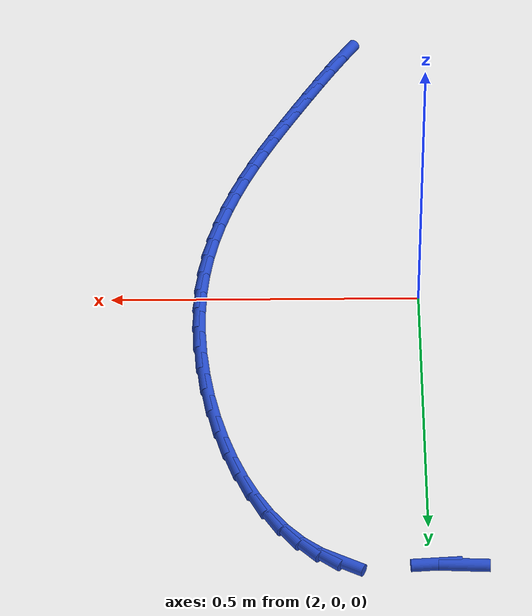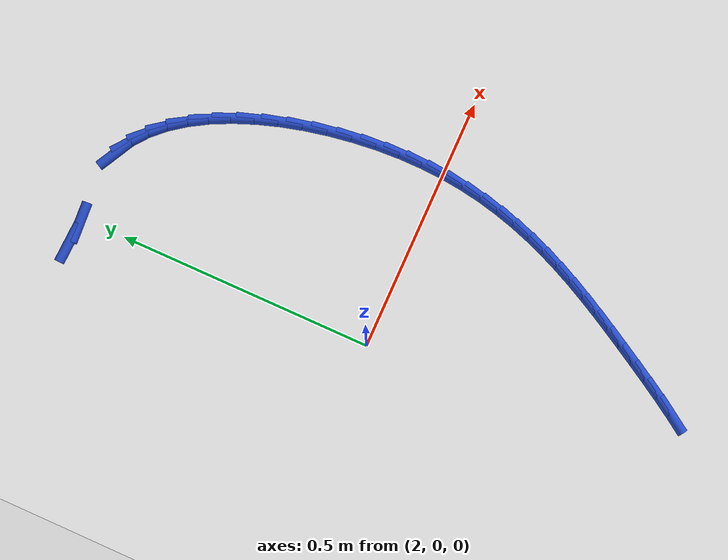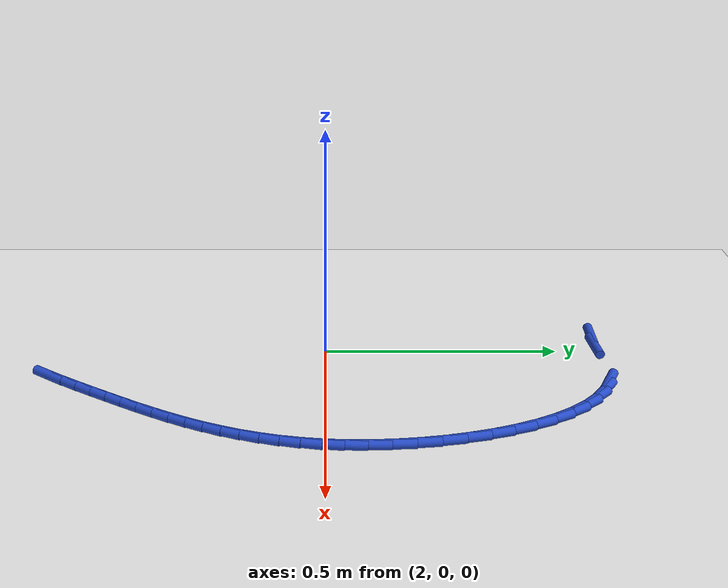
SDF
<sdf version="1.6">
 <world name="default">
  <model name="ground_plane">
   <static>1</static>
   <link name="link">
    <collision name="collision">
     <geometry><plane><normal>0 0 1</normal><size>100 100</size></plane></geometry>
     <surface><friction><ode><mu>100</mu><mu2>50</mu2></ode></friction></surface>
    </collision>
    <visual name="visual">
     <cast_shadows>0</cast_shadows>
     <geometry><plane><normal>0 0 1</normal><size>100 100</size></plane></geometry>
     <material>
      <script><uri>file://media/materials/scripts/gazebo.material</uri><name>Gazebo/WhiteGlow</name></script>
     </material>
    </visual>
   </link>
  </model>
  <model name="line">
   <link name="link_80">
    <pose>1.947225847675556 0.5884268410788208 0.01 0 1.57 -0.04314987171424927</pose>
    <collision name="collision">
     <geometry><cylinder><radius>0.01</radius><length>0.08</length></cylinder></geometry>
    </collision>
    <visual name="visual">
     <material>
      <script><name>Gazebo/Blue</name><uri>file://media/materials/scripts/gazebo.material</uri></script>
     </material>
     <geometry><cylinder><radius>0.01</radius><length>0.08</length></cylinder></geometry>
    </visual>
   </link>
   <link name="link_81">
    <pose>1.9902621955391018 0.5865686747992731 0.01 0 1.57 0.067084478952186</pose>
    <collision name="collision">
     <geometry><cylinder><radius>0.01</radius><length>0.08</length></cylinder></geometry>
    </collision>
    <visual name="visual">
     <material>
      <script><name>Gazebo/Blue</name><uri>file://media/materials/scripts/gazebo.material</uri></script>
     </material>
     <geometry><cylinder><radius>0.01</radius><length>0.08</length></cylinder></geometry>
    </visual>
   </link>
   <link name="link_85">
    <pose>2.1379226514192493 0.5802391763029245 0.01 0 1.57 -0.487581443013725</pose>
    <collision name="collision">
     <geometry><cylinder><radius>0.01</radius><length>0.08</length></cylinder></geometry>
    </collision>
    <visual name="visual">
     <material>
      <script><name>Gazebo/Blue</name><uri>file://media/materials/scripts/gazebo.material</uri></script>
     </material>
     <geometry><cylinder><radius>0.01</radius><length>0.08</length></cylinder></geometry>
    </visual>
   </link>
   <link name="link_86">
    <pose>2.1689075497787798 0.5638083339964297 0.01 0 1.57 -0.6616426683409563</pose>
    <collision name="collision">
     <geometry><cylinder><radius>0.01</radius><length>0.08</length></cylinder></geometry>
    </collision>
    <visual name="visual">
     <material>
      <script><name>Gazebo/Blue</name><uri>file://media/materials/scripts/gazebo.material</uri></script>
     </material>
     <geometry><cylinder><radius>0.01</radius><length>0.08</length></cylinder></geometry>
    </visual>
   </link>
   <link name="link_87">
    <pose>2.197562003624889 0.541493953535901 0.01 0 1.57 -0.8088700209414623</pose>
    <collision name="collision">
     <geometry><cylinder><radius>0.01</radius><length>0.08</length></cylinder></geometry>
    </collision>
    <visual name="visual">
     <material>
      <script><name>Gazebo/Blue</name><uri>file://media/materials/scripts/gazebo.material</uri></script>
     </material>
     <geometry><cylinder><radius>0.01</radius><length>0.08</length></cylinder></geometry>
    </visual>
   </link>
   <link name="link_88">
    <pose>2.2238761103807447 0.5139146356387069 0.01 0 1.57 -0.9313866257830041</pose>
    <collision name="collision">
     <geometry><cylinder><radius>0.01</radius><length>0.08</length></cylinder></geometry>
    </collision>
    <visual name="visual">
     <material>
      <script><name>Gazebo/Blue</name><uri>file://media/materials/scripts/gazebo.material</uri></script>
     </material>
     <geometry><cylinder><radius>0.01</radius><length>0.08</length></cylinder></geometry>
    </visual>
   </link>
   <link name="link_89">
    <pose>2.2478399674695146 0.4816889810222145 0.01 0 1.57 -1.0333906887210105</pose>
    <collision name="collision">
     <geometry><cylinder><radius>0.01</radius><length>0.08</length></cylinder></geometry>
    </collision>
    <visual name="visual">
     <material>
      <script><name>Gazebo/Blue</name><uri>file://media/materials/scripts/gazebo.material</uri></script>
     </material>
     <geometry><cylinder><radius>0.01</radius><length>0.08</length></cylinder></geometry>
    </visual>
   </link>
   <link name="link_90">
    <pose>2.269443672314366 0.44543559040379255 0.01 0 1.57 -1.11927516878934</pose>
    <collision name="collision">
     <geometry><cylinder><radius>0.01</radius><length>0.08</length></cylinder></geometry>
    </collision>
    <visual name="visual">
     <material>
      <script><name>Gazebo/Blue</name><uri>file://media/materials/scripts/gazebo.material</uri></script>
     </material>
     <geometry><cylinder><radius>0.01</radius><length>0.08</length></cylinder></geometry>
    </visual>
   </link>
   <link name="link_91">
    <pose>2.288677322338466 0.40577306450080863 0.01 0 1.57 -1.1928823366078283</pose>
    <collision name="collision">
     <geometry><cylinder><radius>0.01</radius><length>0.08</length></cylinder></geometry>
    </collision>
    <visual name="visual">
     <material>
      <script><name>Gazebo/Blue</name><uri>file://media/materials/scripts/gazebo.material</uri></script>
     </material>
     <geometry><cylinder><radius>0.01</radius><length>0.08</length></cylinder></geometry>
    </visual>
   </link>
   <link name="link_92">
    <pose>2.3055310149649815 0.3633200040306307 0.01 0 1.57 -1.2573609792401905</pose>
    <collision name="collision">
     <geometry><cylinder><radius>0.01</radius><length>0.08</length></cylinder></geometry>
    </collision>
    <visual name="visual">
     <material>
      <script><name>Gazebo/Blue</name><uri>file://media/materials/scripts/gazebo.material</uri></script>
     </material>
     <geometry><cylinder><radius>0.01</radius><length>0.08</length></cylinder></geometry>
    </visual>
   </link>
   <link name="link_93">
    <pose>2.31999484761708 0.3186950097106264 0.01 0 1.57 -1.31525813839005</pose>
    <collision name="collision">
     <geometry><cylinder><radius>0.01</radius><length>0.08</length></cylinder></geometry>
    </collision>
    <visual name="visual">
     <material>
      <script><name>Gazebo/Blue</name><uri>file://media/materials/scripts/gazebo.material</uri></script>
     </material>
     <geometry><cylinder><radius>0.01</radius><length>0.08</length></cylinder></geometry>
    </visual>
   </link>
   <link name="link_94">
    <pose>2.3320589177179296 0.27251668225816444 0.01 0 1.57 -1.3686745710208759</pose>
    <collision name="collision">
     <geometry><cylinder><radius>0.01</radius><length>0.08</length></cylinder></geometry>
    </collision>
    <visual name="visual">
     <material>
      <script><name>Gazebo/Blue</name><uri>file://media/materials/scripts/gazebo.material</uri></script>
     </material>
     <geometry><cylinder><radius>0.01</radius><length>0.08</length></cylinder></geometry>
    </visual>
   </link>
   <link name="link_95">
    <pose>2.3417133226906968 0.22540362239061196 0.01 0 1.57 -1.419423441275754</pose>
    <collision name="collision">
     <geometry><cylinder><radius>0.01</radius><length>0.08</length></cylinder></geometry>
    </collision>
    <visual name="visual">
     <material>
      <script><name>Gazebo/Blue</name><uri>file://media/materials/scripts/gazebo.material</uri></script>
     </material>
     <geometry><cylinder><radius>0.01</radius><length>0.08</length></cylinder></geometry>
    </visual>
   </link>
   <link name="link_96">
    <pose>2.348948159958549 0.17797443082533784 0.01 0 1.57 -1.4691806053929057</pose>
    <collision name="collision">
     <geometry><cylinder><radius>0.01</radius><length>0.08</length></cylinder></geometry>
    </collision>
    <visual name="visual">
     <material>
      <script><name>Gazebo/Blue</name><uri>file://media/materials/scripts/gazebo.material</uri></script>
     </material>
     <geometry><cylinder><radius>0.01</radius><length>0.08</length></cylinder></geometry>
    </visual>
   </link>
   <link name="link_97">
    <pose>2.353753526944654 0.13084770827970887 0.01 0 1.57 -1.5196352819636079</pose>
    <collision name="collision">
     <geometry><cylinder><radius>0.01</radius><length>0.08</length></cylinder></geometry>
    </collision>
    <visual name="visual">
     <material>
      <script><name>Gazebo/Blue</name><uri>file://media/materials/scripts/gazebo.material</uri></script>
     </material>
     <geometry><cylinder><radius>0.01</radius><length>0.08</length></cylinder></geometry>
    </visual>
   </link>
   <link name="link_98">
    <pose>2.356119521072178 0.08464205547109349 0.01 0 1.57 1.5690277225631035</pose>
    <collision name="collision">
     <geometry><cylinder><radius>0.01</radius><length>0.08</length></cylinder></geometry>
    </collision>
    <visual name="visual">
     <material>
      <script><name>Gazebo/Blue</name><uri>file://media/materials/scripts/gazebo.material</uri></script>
     </material>
     <geometry><cylinder><radius>0.01</radius><length>0.08</length></cylinder></geometry>
    </visual>
   </link>
   <link name="link_99">
    <pose>2.356040488785441 0.039955854390743985 0.01 0 1.57 1.513853761605295</pose>
    <collision name="collision">
     <geometry><cylinder><radius>0.01</radius><length>0.08</length></cylinder></geometry>
    </collision>
    <visual name="visual">
     <material>
      <script><name>Gazebo/Blue</name><uri>file://media/materials/scripts/gazebo.material</uri></script>
     </material>
     <geometry><cylinder><radius>0.01</radius><length>0.08</length></cylinder></geometry>
    </visual>
   </link>
   <link name="link_100">
    <pose>2.3535919068106566 -0.002998566814326302 0.01 0 1.57 1.458358270285016</pose>
    <collision name="collision">
     <geometry><cylinder><radius>0.01</radius><length>0.08</length></cylinder></geometry>
    </collision>
    <visual name="visual">
     <material>
      <script><name>Gazebo/Blue</name><uri>file://media/materials/scripts/gazebo.material</uri></script>
     </material>
     <geometry><cylinder><radius>0.01</radius><length>0.08</length></cylinder></geometry>
    </visual>
   </link>
   <link name="link_101">
    <pose>2.3489221099906663 -0.04435557121214312 0.01 0 1.57 1.4034774273507733</pose>
    <collision name="collision">
     <geometry><cylinder><radius>0.01</radius><length>0.08</length></cylinder></geometry>
    </collision>
    <visual name="visual">
     <material>
      <script><name>Gazebo/Blue</name><uri>file://media/materials/scripts/gazebo.material</uri></script>
     </material>
     <geometry><cylinder><radius>0.01</radius><length>0.08</length></cylinder></geometry>
    </visual>
   </link>
   <link name="link_102">
    <pose>2.342182021755949 -0.0842618395181582 0.01 0 1.57 1.3501240868479738</pose>
    <collision name="collision">
     <geometry><cylinder><radius>0.01</radius><length>0.08</length></cylinder></geometry>
    </collision>
    <visual name="visual">
     <material>
      <script><name>Gazebo/Blue</name><uri>file://media/materials/scripts/gazebo.material</uri></script>
     </material>
     <geometry><cylinder><radius>0.01</radius><length>0.08</length></cylinder></geometry>
    </visual>
   </link>
   <link name="link_103">
    <pose>2.3335225655369807 -0.1228640524478232 0.01 0 1.57 1.299191176188648</pose>
    <collision name="collision">
     <geometry><cylinder><radius>0.01</radius><length>0.08</length></cylinder></geometry>
    </collision>
    <visual name="visual">
     <material>
      <script><name>Gazebo/Blue</name><uri>file://media/materials/scripts/gazebo.material</uri></script>
     </material>
     <geometry><cylinder><radius>0.01</radius><length>0.08</length></cylinder></geometry>
    </visual>
   </link>
   <link name="link_104">
    <pose>2.3230946647642394 -0.16030889071658977 0.01 0 1.57 1.2515005173727378</pose>
    <collision name="collision">
     <geometry><cylinder><radius>0.01</radius><length>0.08</length></cylinder></geometry>
    </collision>
    <visual name="visual">
     <material>
      <script><name>Gazebo/Blue</name><uri>file://media/materials/scripts/gazebo.material</uri></script>
     </material>
     <geometry><cylinder><radius>0.01</radius><length>0.08</length></cylinder></geometry>
    </visual>
   </link>
   <link name="link_105">
    <pose>2.311049242868204 -0.19674303503990956 0.01 0 1.57 1.207763068497957</pose>
    <collision name="collision">
     <geometry><cylinder><radius>0.01</radius><length>0.08</length></cylinder></geometry>
    </collision>
    <visual name="visual">
     <material>
      <script><name>Gazebo/Blue</name><uri>file://media/materials/scripts/gazebo.material</uri></script>
     </material>
     <geometry><cylinder><radius>0.01</radius><length>0.08</length></cylinder></geometry>
    </visual>
   </link>
   <link name="link_106">
    <pose>2.2975372232793507 -0.23231316613323436 0.01 0 1.57 1.1685550168719432</pose>
    <collision name="collision">
     <geometry><cylinder><radius>0.01</radius><length>0.08</length></cylinder></geometry>
    </collision>
    <visual name="visual">
     <material>
      <script><name>Gazebo/Blue</name><uri>file://media/materials/scripts/gazebo.material</uri></script>
     </material>
     <geometry><cylinder><radius>0.01</radius><length>0.08</length></cylinder></geometry>
    </visual>
   </link>
   <link name="link_107">
    <pose>2.2827095294281565 -0.2671659647120157 0.01 0 1.57 1.1343102722675777</pose>
    <collision name="collision">
     <geometry><cylinder><radius>0.01</radius><length>0.08</length></cylinder></geometry>
    </collision>
    <visual name="visual">
     <material>
      <script><name>Gazebo/Blue</name><uri>file://media/materials/scripts/gazebo.material</uri></script>
     </material>
     <geometry><cylinder><radius>0.01</radius><length>0.08</length></cylinder></geometry>
    </visual>
   </link>
   <link name="link_108">
    <pose>2.2667170847451 -0.3014481114917054 0.01 0 1.57 1.105326674334259</pose>
    <collision name="collision">
     <geometry><cylinder><radius>0.01</radius><length>0.08</length></cylinder></geometry>
    </collision>
    <visual name="visual">
     <material>
      <script><name>Gazebo/Blue</name><uri>file://media/materials/scripts/gazebo.material</uri></script>
     </material>
     <geometry><cylinder><radius>0.01</radius><length>0.08</length></cylinder></geometry>
    </visual>
   </link>
   <link name="link_109">
    <pose>2.2497108126606595 -0.33530628718775507 0.01 0 1.57 1.081781435992368</pose>
    <collision name="collision">
     <geometry><cylinder><radius>0.01</radius><length>0.08</length></cylinder></geometry>
    </collision>
    <visual name="visual">
     <material>
      <script><name>Gazebo/Blue</name><uri>file://media/materials/scripts/gazebo.material</uri></script>
     </material>
     <geometry><cylinder><radius>0.01</radius><length>0.08</length></cylinder></geometry>
    </visual>
   </link>
   <link name="link_110">
    <pose>2.2318416366053104 -0.3688871725156163 0.01 0 1.57 1.0637510488874533</pose>
    <collision name="collision">
     <geometry><cylinder><radius>0.01</radius><length>0.08</length></cylinder></geometry>
    </collision>
    <visual name="visual">
     <material>
      <script><name>Gazebo/Blue</name><uri>file://media/materials/scripts/gazebo.material</uri></script>
     </material>
     <geometry><cylinder><radius>0.01</radius><length>0.08</length></cylinder></geometry>
    </visual>
   </link>
   <link name="link_111">
    <pose>2.2132604800095312 -0.4023374481907409 0.01 0 1.57 1.051231631306601</pose>
    <collision name="collision">
     <geometry><cylinder><radius>0.01</radius><length>0.08</length></cylinder></geometry>
    </collision>
    <visual name="visual">
     <material>
      <script><name>Gazebo/Blue</name><uri>file://media/materials/scripts/gazebo.material</uri></script>
     </material>
     <geometry><cylinder><radius>0.01</radius><length>0.08</length></cylinder></geometry>
    </visual>
   </link>
   <link name="link_112">
    <pose>2.1941182663038004 -0.43580379492858057 0.01 0 1.57 1.044063918266419</pose>
    <collision name="collision">
     <geometry><cylinder><radius>0.01</radius><length>0.08</length></cylinder></geometry>
    </collision>
    <visual name="visual">
     <material>
      <script><name>Gazebo/Blue</name><uri>file://media/materials/scripts/gazebo.material</uri></script>
     </material>
     <geometry><cylinder><radius>0.01</radius><length>0.08</length></cylinder></geometry>
    </visual>
   </link>
   <link name="link_113">
    <pose>2.1745635329603314 -0.4694297995659173 0.01 0 1.57 1.03757813525455</pose>
    <collision name="collision">
     <geometry><cylinder><radius>0.01</radius><length>0.08</length></cylinder></geometry>
    </collision>
    <visual name="visual">
     <material>
      <script><name>Gazebo/Blue</name><uri>file://media/materials/scripts/gazebo.material</uri></script>
     </material>
     <geometry><cylinder><radius>0.01</radius><length>0.08</length></cylinder></geometry>
    </visual>
   </link>
   <link name="link_114">
    <pose>2.1546270168422965 -0.5032062965644194 0.01 0 1.57 1.0252009412261112</pose>
    <collision name="collision">
     <geometry><cylinder><radius>0.01</radius><length>0.08</length></cylinder></geometry>
    </collision>
    <visual name="visual">
     <material>
      <script><name>Gazebo/Blue</name><uri>file://media/materials/scripts/gazebo.material</uri></script>
     </material>
     <geometry><cylinder><radius>0.01</radius><length>0.08</length></cylinder></geometry>
    </visual>
   </link>
   <link name="link_115">
    <pose>2.1341701193178517 -0.5369045425816579 0.01 0 1.57 1.0063984592023294</pose>
    <collision name="collision">
     <geometry><cylinder><radius>0.01</radius><length>0.08</length></cylinder></geometry>
    </collision>
    <visual name="visual">
     <material>
      <script><name>Gazebo/Blue</name><uri>file://media/materials/scripts/gazebo.material</uri></script>
     </material>
     <geometry><cylinder><radius>0.01</radius><length>0.08</length></cylinder></geometry>
    </visual>
   </link>
   <link name="link_116">
    <pose>2.113041121437475 -0.5702787811230329 0.01 0 1.57 0.9810406048427349</pose>
    <collision name="collision">
     <geometry><cylinder><radius>0.01</radius><length>0.08</length></cylinder></geometry>
    </collision>
    <visual name="visual">
     <material>
      <script><name>Gazebo/Blue</name><uri>file://media/materials/scripts/gazebo.material</uri></script>
     </material>
     <geometry><cylinder><radius>0.01</radius><length>0.08</length></cylinder></geometry>
    </visual>
   </link>
  </model>
 </world>
</sdf>
